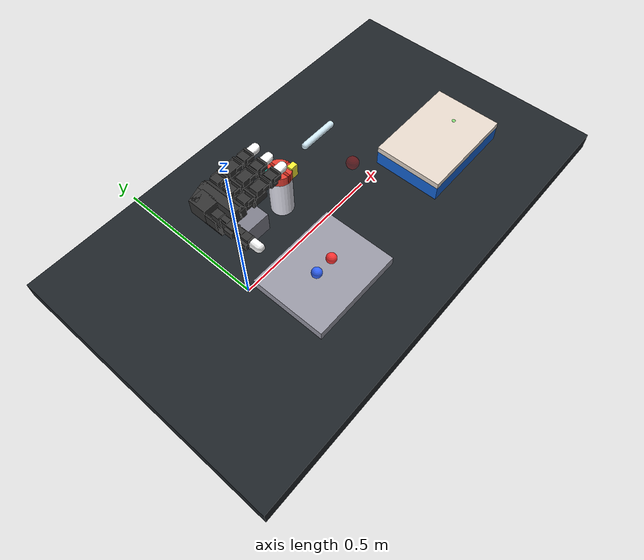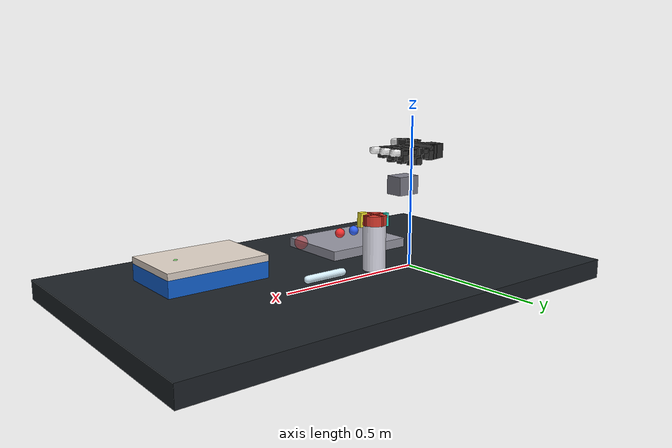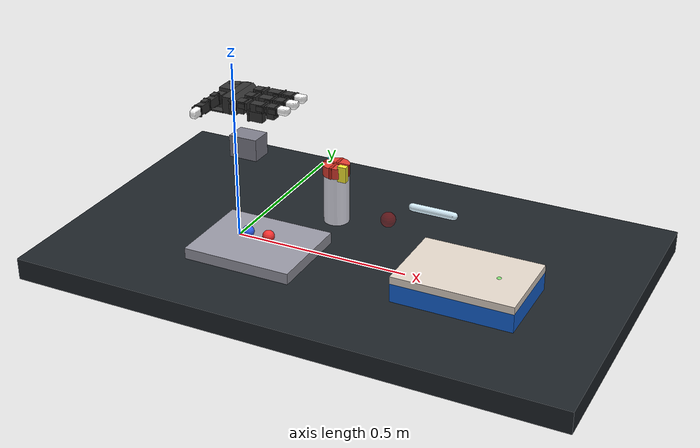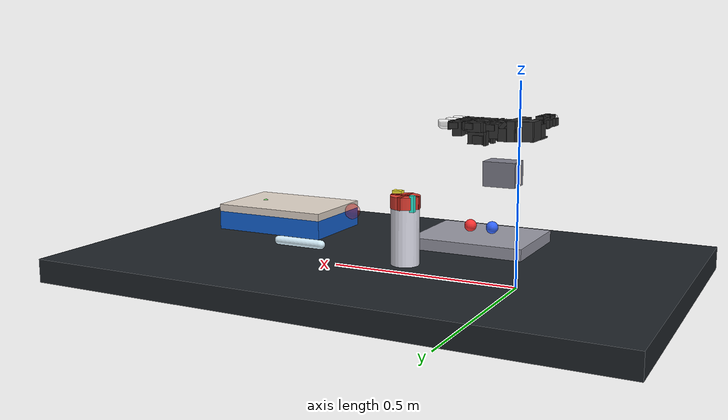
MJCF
<mujoco model="leap_rh">
  <compiler angle="radian" meshdir="assets/leap_hand/assets/"/>
  <option integrator="implicitfast" cone="elliptic" impratio="100"/>

  <!-- mesh assets -->
  <visual><global offwidth="1280" offheight="720"/></visual>
  <asset>
    <material name="black" rgba="0.2 0.2 0.2 1"/>
    <material name="white" rgba="1 1 1 1"/>

    <mesh name="palm" file="palm_right.obj"/>
    <mesh name="base" file="base.obj"/>
    <mesh name="proximal" file="proximal.obj"/>
    <mesh name="medial" file="medial.obj"/>
    <mesh name="distal" file="distal.obj"/>
    <mesh name="tip" file="tip.obj"/>
    <mesh name="thumb_base" file="thumb_base.obj"/>
    <mesh name="thumb_proximal" file="thumb_proximal.obj"/>
    <mesh name="thumb_distal" file="thumb_distal.obj"/>
    <mesh name="thumb_tip" file="thumb_tip.obj"/>
  </asset>

  <!-- defaults -->
  <default>
    <!-- constraint stiffness -->
    <geom solimp="0.999 0.999 0.001 0.0001 1" solref="0.0001 1" friction=".2"/>

    <!-- actuator defaults -->
    <position kp="3.0" kv="0.01"/>
    <joint damping="0.03" frictionloss="0.001"/>

    <!-- geom class defaults -->
    <default class="visual">
      <geom group="1" type="mesh" contype="0" conaffinity="0" density="0" material="black"/>
    </default>
    <default class="collision">
      <geom material="black"/>
    </default>
    <default class="tip">
      <geom type="mesh" mesh="tip" friction="0.5" material="white"/>
    </default>
    <default class="thumb_tip">
      <geom type="mesh" mesh="thumb_tip" friction="0.5" material="white"/>
    </default>

    <!-- joint class defaults -->
    <default class="mcp">
      <joint pos="0 0 0" axis="0 0 -1" limited="true" range="-0.314 2.23"/>
      <position ctrlrange="-0.314 2.23"/>
    </default>
    <default class="rot">
      <joint pos="0 0 0" axis="0 0 -1" limited="true" range="-1.047 1.047"/>
      <position ctrlrange="-1.047 1.047"/>
    </default>
    <default class="pip">
      <joint pos="0 0 0" axis="0 0 -1" limited="true" range="-0.506 1.885"/>
      <position ctrlrange="-0.506 1.885"/>
    </default>
    <default class="dip">
      <joint pos="0 0 0" axis="0 0 -1" limited="true" range="-0.366 2.042"/>
      <position ctrlrange="-0.366 2.042"/>
    </default>
    <default class="thumb_cmc">
      <joint pos="0 0 0" axis="0 0 -1" limited="true" range="-0.349 2.094"/>
      <position ctrlrange="-0.349 2.094"/>
    </default>
    <default class="thumb_axl">
      <joint pos="0 0 0" axis="0 0 -1" limited="true" range="-0.349 2.094"/>
      <position ctrlrange="-0.349 2.094"/>
    </default>
    <default class="thumb_mcp">
      <joint pos="0 0 0" axis="0 0 -1" limited="true" range="-0.47 2.443"/>
      <position ctrlrange="-0.47 2.443"/>
    </default>
    <default class="thumb_ipl">
      <joint pos="0 0 0" axis="0 0 -1" limited="true" range="-1.34 1.88"/>
      <position ctrlrange="-1.34 1.88"/>
    </default>
  </default>

  <!-- collision filtering -->
  <contact>
    <!-- filter the palm from all other finger bodies except the tips -->
    <exclude body1="palm" body2="if_bs"/>
    <exclude body1="palm" body2="mf_bs"/>
    <exclude body1="palm" body2="rf_bs"/>
    <exclude body1="palm" body2="th_mp"/>

    <exclude body1="palm" body2="if_px"/>
    <exclude body1="palm" body2="mf_px"/>
    <exclude body1="palm" body2="rf_px"/>
    <exclude body1="palm" body2="th_bs"/>

    <exclude body1="palm" body2="if_md"/>
    <exclude body1="palm" body2="mf_md"/>
    <exclude body1="palm" body2="rf_md"/>
    <exclude body1="palm" body2="th_px"/>

    <!-- none of the base fingertip geoms can touch each other -->
    <exclude body1="if_bs" body2="mf_bs"/>
    <exclude body1="if_bs" body2="rf_bs"/>
    <exclude body1="mf_bs" body2="rf_bs"/>

    <exclude body1="th_mp" body2="if_bs"/>
    <exclude body1="th_mp" body2="mf_bs"/>
    <exclude body1="th_mp" body2="rf_bs"/>
  </contact>

  <!-- actuators -->
  <actuator>
    <!-- index -->
    <position name="if_mcp_act" joint="if_mcp" class="mcp"/>
    <position name="if_rot_act" joint="if_rot" class="rot"/>
    <position name="if_pip_act" joint="if_pip" class="pip"/>
    <position name="if_dip_act" joint="if_dip" class="dip"/>

    <!-- middle -->
    <position name="mf_mcp_act" joint="mf_mcp" class="mcp"/>
    <position name="mf_rot_act" joint="mf_rot" class="rot"/>
    <position name="mf_pip_act" joint="mf_pip" class="pip"/>
    <position name="mf_dip_act" joint="mf_dip" class="dip"/>

    <!-- ring -->
    <position name="rf_mcp_act" joint="rf_mcp" class="mcp"/>
    <position name="rf_rot_act" joint="rf_rot" class="rot"/>
    <position name="rf_pip_act" joint="rf_pip" class="pip"/>
    <position name="rf_dip_act" joint="rf_dip" class="dip"/>

    <!-- thumb -->
    <position name="th_cmc_act" joint="th_cmc" class="thumb_cmc"/>
    <position name="th_axl_act" joint="th_axl" class="thumb_axl"/>
    <position name="th_mcp_act" joint="th_mcp" class="thumb_mcp"/>
    <position name="th_ipl_act" joint="th_ipl" class="thumb_ipl"/>
    <position joint="arm_x" kp="220"/>
  <position joint="arm_y" kp="220"/>
  <position joint="arm_z" kp="220"/>
  <position joint="lid_hinge" kp="10"/>
</actuator>

  <!-- sensors -->
  <sensor>
    <!-- index -->
    <jointpos name="if_mcp_sensor" joint="if_mcp"/>
    <jointpos name="if_rot_sensor" joint="if_rot"/>
    <jointpos name="if_pip_sensor" joint="if_pip"/>
    <jointpos name="if_dip_sensor" joint="if_dip"/>

    <!-- middle -->
    <jointpos name="mf_mcp_sensor" joint="mf_mcp"/>
    <jointpos name="mf_rot_sensor" joint="mf_rot"/>
    <jointpos name="mf_pip_sensor" joint="mf_pip"/>
    <jointpos name="mf_dip_sensor" joint="mf_dip"/>

    <!-- ring -->
    <jointpos name="rf_mcp_sensor" joint="rf_mcp"/>
    <jointpos name="rf_rot_sensor" joint="rf_rot"/>
    <jointpos name="rf_pip_sensor" joint="rf_pip"/>
    <jointpos name="rf_dip_sensor" joint="rf_dip"/>

    <!-- thumb -->
    <jointpos name="th_cmc_sensor" joint="th_cmc"/>
    <jointpos name="th_axl_sensor" joint="th_axl"/>
    <jointpos name="th_mcp_sensor" joint="th_mcp"/>
    <jointpos name="th_ipl_sensor" joint="th_ipl"/>
    <jointpos joint="arm_x"/>
  <jointpos joint="arm_y"/>
  <jointpos joint="arm_z"/>
  <touch name="lid_touch" site="lid_touch_site"/>
</sensor>

  <worldbody>
    <light pos="0 -3 4" dir="0 1 -1"/>
    <camera name="overhead" pos="0.35 0 3.2" xyaxes="1 0 0 0 1 0"/>
    <camera name="side" pos="0.35 -2.2 0.7" xyaxes="1 0 0 0 0 1"/>
    <camera name="closeup" mode="targetbody" target="arm_base" pos="0.15 -0.3 0.15"/>

    <geom name="table" type="box" size="0.75 0.45 0.03" pos="0.35 0 0.02" rgba="0.12 0.14 0.16 1"/>
    <geom name="pill_tray" type="box" size="0.15 0.12 0.015" pos="0.15 -0.15 0.075" rgba="0.6 0.6 0.65 1"/>

    <body name="pill_red" pos="0.18 -0.15 0.11"><joint name="pill_red_f" type="free"/>
      <geom type="sphere" size="0.016" rgba="1 0.2 0.2 1" mass="0.003"/></body>
    <body name="pill_blue" pos="0.12 -0.15 0.11"><joint name="pill_blue_f" type="free"/>
      <geom type="sphere" size="0.016" rgba="0.2 0.4 1 1" mass="0.003"/></body>

    <body name="kit_box" pos="0.72 -0.12 0.06">
      <geom name="kit_base" type="box" size="0.16 0.11 0.025" pos="0 0 0.025" rgba="0.08 0.4 0.85 1"/>
      <geom type="box" size="0.06 0.09 0.018" pos="-0.05 0 0.04" rgba="0.15 0.45 0.85 0.7"/>
      <geom type="box" size="0.025 0.09 0.018" pos="0.07 0 0.04" rgba="0.15 0.45 0.85 0.7"/>
      <body name="kit_lid" pos="0 0 0.05">
        <joint name="lid_hinge" type="hinge" axis="0 1 0" range="0 1.571"/>
        <geom name="lid_geom" type="box" size="0.16 0.11 0.01" pos="0 0 0.01" rgba="0.9 0.85 0.8 1"/>
        <site name="lid_touch_site" pos="0.08 0 0.015" size="0.008" type="sphere" rgba="0 1 0 0.4"/>
      </body>
    </body>

    <body name="medicine_vial" pos="0.25 0.10 0.13"><joint name="vial_free" type="free"/>
      <geom name="vial_body" type="cylinder" size="0.035 0.075" rgba="0.9 0.9 0.95 1" mass="0.05"/></body>

    <body name="medicine_cap" pos="0.25 0.10 0.21"><joint name="cap_free" type="free"/>
      <geom name="cap_geom" type="cylinder" size="0.037 0.015" rgba="0.9 0.25 0.2 1" mass="0.008"/>
      <geom type="box" size="0.037 0.004 0.016" pos="0 0 0" rgba="0.75 0.15 0.1 1"/>
      <geom type="box" size="0.004 0.037 0.016" pos="0 0 0" rgba="0.75 0.15 0.1 1"/>
      <geom name="cap_notch" type="box" size="0.012 0.008 0.022" pos="0.030 -0.022 0" rgba="1 0.95 0.2 1"/>
      <geom name="cap_notch2" type="box" size="0.006 0.006 0.020" pos="-0.028 0.020 0" rgba="0.2 1 0.9 1"/>
    </body>

    <body name="syringe" pos="0.50 0.18 0.10"><joint name="syringe_free" type="free"/>
      <geom type="capsule" fromto="-0.06 0 0 0.06 0 0" size="0.011" rgba="0.85 0.95 1 1" mass="0.02"/></body>

    <body name="target_site_body" pos="0.45 0 0.15"><site name="target_site" size="0.02" rgba="1 0 0 0.3"/></body>

    <body name="arm_base" pos="0.04 0 0.28">
      <joint name="arm_x" type="slide" axis="1 0 0" range="0 0.9"/>
      <joint name="arm_y" type="slide" axis="0 1 0" range="-0.3 0.3"/>
      <joint name="arm_z" type="slide" axis="0 0 1" range="-0.2 0.25"/>
      <geom type="box" size="0.04 0.03 0.03" rgba="0.5 0.5 0.55 1"/>
      <body name="palm" pos="0 0 0.1" quat="0 1 0 0">

      <!-- palm -->
      <inertial pos="-0.049542 -0.042914 -0.010227" quat="0.565586 0.427629 -0.574956 0.408254" mass="0.237"
        diaginertia="0.000407345 0.000304759 0.000180736"/>
      <geom name="palm_collision_1" size="0.011 0.013 0.017" pos="-0.009 0.008 -0.011" type="box" class="collision"/>
      <geom name="palm_collision_2" size="0.011 0.013 0.017" pos="-0.009 -0.037 -0.011" type="box" class="collision"/>
      <geom name="palm_collision_3" size="0.011 0.013 0.017" pos="-0.009 -0.082 -0.011" type="box" class="collision"/>
      <geom name="palm_collision_4" size="0.029 0.01 0.023" pos="-0.066 -0.078 -0.0115" quat="0.989016 0 0 -0.147806"
        type="box" class="collision"/>
      <geom name="palm_collision_5" size="0.01 0.06 0.015" pos="-0.03 -0.035 -0.003" type="box" class="collision"/>
      <geom name="palm_collision_6" size="0.005 0.06 0.01" pos="-0.032 -0.035 -0.024" quat="0.923956 0 0.382499 0"
        type="box" class="collision"/>
      <geom name="palm_collision_7" size="0.012 0.058 0.023" pos="-0.048 -0.033 -0.0115" type="box" class="collision"/>
      <geom name="palm_collision_8" size="0.022 0.026 0.023" pos="-0.078 -0.053 -0.0115" type="box" class="collision"/>
      <geom name="palm_collision_9" size="0.002 0.018 0.017" pos="-0.098 -0.009 -0.006" type="box" class="collision"/>
      <geom name="palm_collision_10" size="0.022 0.028 0.002" pos="-0.078 -0.003 0.01" type="box" class="collision"/>

      <!-- index -->
      <body name="if_bs" pos="-0.007 0.023 -0.0187" quat="0.500003 0.5 0.5 -0.499997">
        <inertial pos="-0.022516 0.033882 0.016359" quat="0.388092 0.677951 -0.247713 0.573067" mass="0.044"
          diaginertia="1.74972e-05 1.61504e-05 7.21342e-06"/>
        <joint name="if_mcp" class="mcp"/>
        <geom name="if_bs_collision_1" size="0.01 0.003 0.017" pos="0 0.018 0.0147" type="box" class="collision"/>
        <geom name="if_bs_collision_2" size="0.014 0.02 0.01" pos="-0.027 0.042 0.015" type="box" class="collision"/>
        <geom name="if_bs_collision_3" size="0.017 0.003 0.01" pos="-0.0262 0.02 0.0146" type="box" class="collision"/>
        <geom name="if_bs_collision_4" size="0.01 0.012 0.004" pos="-0.0295 0.035 0.029" type="box" class="collision"/>
        <geom name="if_bs_collision_5" size="0.007 0.01 0.002" pos="0 0.005 0.03" type="box" class="collision"/>
        <geom name="if_bs_collision_6" size="0.007 0.01 0.002" pos="0 0.005 -0.001" type="box" class="collision"/>

        <body name="if_px" pos="-0.0122 0.0381 0.0145" quat="0.500003 -0.5 -0.499997 0.5">
          <inertial pos="0.0075 -0.0002 -0.011" quat="0 0.707107 0 0.707107" mass="0.032"
            diaginertia="4.8853e-06 4.3733e-06 3.0933e-06"/>
          <joint name="if_rot" class="rot"/>
          <geom name="if_px_collision" size="0.017 0.013 0.011" pos="0.0075 -0.0002 -0.011" type="box"
            class="collision"/>

          <body name="if_md" pos="0.015 0.0143 -0.013" quat="0.500003 0.5 -0.5 0.499997">
            <inertial pos="0.0054215 -0.029148 0.015" quat="0.687228 0.687228 0.166487 0.166487" mass="0.037"
              diaginertia="8.28004e-06 8.1598e-06 5.39516e-06"/>
            <joint name="if_pip" class="pip"/>
            <geom name="if_md_collision_1" size="0.008 0.003 0.013" pos="0 -0.02 0.015" type="box" class="collision"/>
            <geom name="if_md_collision_2" size="0.01 0.002 0.017" pos="0 -0.016 0.015" type="box" class="collision"/>
            <geom name="if_md_collision_3" size="0.007 0.01 0.002" pos="0 -0.0045 0.03" type="box" class="collision"/>
            <geom name="if_md_collision_4" size="0.007 0.01 0.002" pos="0 -0.0045 0" type="box" class="collision"/>
            <geom name="if_md_collision_5" size="0.017 0.011 0.013" pos="0.0075 -0.035 0.015" type="box"
              class="collision"/>

            <body name="if_ds" pos="0 -0.0361 0.0002">
              <inertial pos="-0.0008794 -0.027019 0.014594" quat="0.702905 0.710643 -0.0212937 -0.0214203" mass="0.016"
                diaginertia="3.71863e-06 3.02396e-06 1.6518e-06"/>
              <joint name="if_dip" class="dip"/>
              <geom name="if_ds_collision_1" size="0.01 0.003 0.015" pos="0 -0.017 0.015" type="box" class="collision"/>
              <geom name="if_ds_collision_2" size="0.007 0.011 0.002" pos="0 -0.006 0.03" type="box" class="collision"/>
              <geom name="if_ds_collision_3" size="0.007 0.011 0.002" pos="0 -0.006 -0.001" type="box"
                class="collision"/>

              <geom name="if_tip" class="tip"/>
            </body>
          </body>
        </body>
      </body>
      <!-- index -->

      <!-- middle -->
      <body name="mf_bs" pos="-0.0071 -0.0224 -0.0187" quat="0.500003 0.5 0.5 -0.499997">
        <inertial pos="-0.022516 0.033882 0.016359" quat="0.388092 0.677951 -0.247713 0.573067" mass="0.044"
          diaginertia="1.74972e-05 1.61504e-05 7.21342e-06"/>
        <joint name="mf_mcp" class="mcp"/>
        <geom name="mf_bs_collision_1" size="0.01 0.003 0.017" pos="0 0.018 0.0147" type="box" class="collision"/>
        <geom name="mf_bs_collision_2" size="0.014 0.02 0.01" pos="-0.027 0.042 0.015" type="box" class="collision"/>
        <geom name="mf_bs_collision_3" size="0.017 0.003 0.01" pos="-0.0262 0.02 0.0146" type="box" class="collision"/>
        <geom name="mf_bs_collision_4" size="0.01 0.012 0.004" pos="-0.0295 0.035 0.029" type="box" class="collision"/>
        <geom name="mf_bs_collision_5" size="0.007 0.01 0.002" pos="0 0.005 0.03" type="box" class="collision"/>
        <geom name="mf_bs_collision_6" size="0.007 0.01 0.002" pos="0 0.005 -0.001" type="box" class="collision"/>

        <body name="mf_px" pos="-0.0122 0.0381 0.0145" quat="0.500003 -0.5 -0.499997 0.5">
          <inertial pos="0.0075 -0.0002 -0.011" quat="0 0.707107 0 0.707107" mass="0.032"
            diaginertia="4.8853e-06 4.3733e-06 3.0933e-06"/>
          <joint name="mf_rot" class="rot"/>
          <geom name="mf_px_collision" size="0.017 0.013 0.011" pos="0.0075 -0.0002 -0.011" type="box"
            class="collision"/>

          <body name="mf_md" pos="0.015 0.0143 -0.013" quat="0.500003 0.5 -0.5 0.499997">
            <inertial pos="0.0054215 -0.029148 0.015" quat="0.687228 0.687228 0.166487 0.166487" mass="0.037"
              diaginertia="8.28004e-06 8.1598e-06 5.39516e-06"/>
            <joint name="mf_pip" class="pip"/>
            <geom name="mf_md_collision_1" size="0.008 0.003 0.013" pos="0 -0.02 0.015" type="box" class="collision"/>
            <geom name="mf_md_collision_2" size="0.01 0.002 0.017" pos="0 -0.016 0.015" type="box" class="collision"/>
            <geom name="mf_md_collision_3" size="0.007 0.01 0.002" pos="0 -0.0045 0.03" type="box" class="collision"/>
            <geom name="mf_md_collision_4" size="0.007 0.01 0.002" pos="0 -0.0045 0" type="box" class="collision"/>
            <geom name="mf_md_collision_5" size="0.017 0.011 0.013" pos="0.0075 -0.035 0.015" type="box"
              class="collision"/>

            <body name="mf_ds" pos="0 -0.0361 0.0002">
              <inertial pos="-0.0008794 -0.027019 0.014594" quat="0.702905 0.710643 -0.0212937 -0.0214203" mass="0.016"
                diaginertia="3.71863e-06 3.02396e-06 1.6518e-06"/>
              <joint name="mf_dip" class="dip"/>
              <geom name="mf_ds_collision_1" size="0.01 0.003 0.015" pos="0 -0.017 0.015" type="box" class="collision"/>
              <geom name="mf_ds_collision_2" size="0.007 0.011 0.002" pos="0 -0.006 0.03" type="box" class="collision"/>
              <geom name="mf_ds_collision_3" size="0.007 0.011 0.002" pos="0 -0.006 -0.001" type="box"
                class="collision"/>

              <geom name="mf_tip" class="tip"/>
            </body>
          </body>
        </body>
      </body>
      <!-- middle -->

      <!-- ring -->
      <body name="rf_bs" pos="-0.00709 -0.0678 -0.0187" quat="0.500003 0.5 0.5 -0.499997">
        <inertial pos="-0.022516 0.033882 0.016359" quat="0.388092 0.677951 -0.247713 0.573067" mass="0.044"
          diaginertia="1.74972e-05 1.61504e-05 7.21342e-06"/>
        <joint name="rf_mcp" class="mcp"/>
        <geom name="rf_bs_collision_1" size="0.01 0.003 0.017" pos="0 0.018 0.0147" type="box" class="collision"/>
        <geom name="rf_bs_collision_2" size="0.014 0.02 0.01" pos="-0.027 0.042 0.015" type="box" class="collision"/>
        <geom name="rf_bs_collision_3" size="0.017 0.003 0.01" pos="-0.0262 0.02 0.0146" type="box" class="collision"/>
        <geom name="rf_bs_collision_4" size="0.01 0.012 0.004" pos="-0.0295 0.035 0.029" type="box" class="collision"/>
        <geom name="rf_bs_collision_5" size="0.007 0.01 0.002" pos="0 0.005 0.03" type="box" class="collision"/>
        <geom name="rf_bs_collision_6" size="0.007 0.01 0.002" pos="0 0.005 -0.001" type="box" class="collision"/>

        <body name="rf_px" pos="-0.0122 0.0381 0.0145" quat="0.500003 -0.5 -0.499997 0.5">
          <inertial pos="0.0075 -0.0002 -0.011" quat="0 0.707107 0 0.707107" mass="0.032"
            diaginertia="4.8853e-06 4.3733e-06 3.0933e-06"/>
          <joint name="rf_rot" class="rot"/>
          <geom name="rf_px_collision" size="0.017 0.013 0.011" pos="0.0075 -0.0002 -0.011" type="box"
            class="collision"/>

          <body name="rf_md" pos="0.015 0.0143 -0.013" quat="0.500003 0.5 -0.5 0.499997">
            <inertial pos="0.0054215 -0.029148 0.015" quat="0.687228 0.687228 0.166487 0.166487" mass="0.037"
              diaginertia="8.28004e-06 8.1598e-06 5.39516e-06"/>
            <joint name="rf_pip" class="pip"/>
            <geom name="rf_md_collision_1" size="0.008 0.003 0.013" pos="0 -0.02 0.015" type="box" class="collision"/>
            <geom name="rf_md_collision_2" size="0.01 0.002 0.017" pos="0 -0.016 0.015" type="box" class="collision"/>
            <geom name="rf_md_collision_3" size="0.007 0.01 0.002" pos="0 -0.0045 0.03" type="box" class="collision"/>
            <geom name="rf_md_collision_4" size="0.007 0.01 0.002" pos="0 -0.0045 0" type="box" class="collision"/>
            <geom name="rf_md_collision_5" size="0.017 0.011 0.013" pos="0.0075 -0.035 0.015" type="box"
              class="collision"/>

            <body name="rf_ds" pos="0 -0.03609 0.0002">
              <inertial pos="-0.0008794 -0.027019 0.014594" quat="0.702905 0.710643 -0.0212937 -0.0214203" mass="0.016"
                diaginertia="3.71863e-06 3.02396e-06 1.6518e-06"/>
              <joint name="rf_dip" class="dip"/>
              <geom name="rf_ds_collision_1" size="0.01 0.003 0.015" pos="0 -0.017 0.015" type="box" class="collision"/>
              <geom name="rf_ds_collision_2" size="0.007 0.011 0.002" pos="0 -0.006 0.03" type="box" class="collision"/>
              <geom name="rf_ds_collision_3" size="0.007 0.011 0.002" pos="0 -0.006 -0.001" type="box"
                class="collision"/>

              <geom name="rf_tip" class="tip"/>
            </body>
          </body>
        </body>
      </body>
      <!-- ring -->

      <!-- thumb -->
      <body name="th_mp" pos="-0.0693 -0.0012 -0.0216" quat="0.707109 0 0.707105 0">
        <inertial pos="0.0075 -0.0002 -0.011" quat="0 0.707107 0 0.707107" mass="0.032"
          diaginertia="4.8853e-06 4.3733e-06 3.0933e-06"/>
        <joint name="th_cmc" class="thumb_cmc"/>
        <geom name="th_mp_collision" size="0.017 0.013 0.011" pos="-0.0075 -0.0002 -0.011" type="box"
          class="collision"/>

        <body name="th_bs" pos="0 0.0143 -0.013" quat="0.500003 0.5 -0.5 0.499997">
          <inertial pos="0 0 -0.0070806" quat="0.707107 0.707107 0 0" mass="0.003"
            diaginertia="6.1932e-07 5.351e-07 2.1516e-07"/>
          <joint name="th_axl" class="thumb_axl"/>
          <geom name="th_bs_collision_1" size="0.009 0.0165 0.002" pos="0 0 -0.0015" type="box" class="collision"/>
          <geom name="th_bs_collision_2" size="0.007 0.002 0.01" pos="0 -0.015 -0.013" type="box" class="collision"/>
          <geom name="th_bs_collision_3" size="0.007 0.002 0.01" pos="0 0.015 -0.013" type="box" class="collision"/>

          <body name="th_px" pos="0 0.0145 -0.017" quat="0.707109 -0.707105 0 0">
            <inertial pos="-0.0020593 0.015912 -0.013733" quat="0.698518 0.697382 -0.104933 0.121324" mass="0.038"
              diaginertia="9.87104e-06 9.32653e-06 4.36203e-06"/>
            <joint name="th_mcp" class="thumb_mcp"/>
            <geom name="th_px_collision_1" size="0.01 0.02 0.012" pos="0 0.0105 -0.014" type="box" class="collision"/>
            <geom name="th_px_collision_2" size="0.01 0.002 0.016" pos="0 0.031 -0.015" type="box" class="collision"/>
            <geom name="th_px_collision_3" size="0.007 0.01 0.002" pos="0 0.042 0.001" type="box" class="collision"/>
            <geom name="th_px_collision_4" size="0.007 0.01 0.002" pos="0 0.042 -0.029" type="box" class="collision"/>
            <geom name="th_px_collision_5" size="0.005 0.012 0.009" pos="-0.0135 0.0175 -0.011656" type="box"
              class="collision"/>

            <body name="th_ds" pos="0 0.0466 0.0002" quat="1.32679e-06 0 0 1">
              <inertial pos="0.00096191 -0.024203 -0.014419" quat="0.35287 0.311272 -0.632839 0.614904" mass="0.049"
                diaginertia="2.08591e-05 2.0402e-05 4.71335e-06"/>
              <joint name="th_ipl" class="thumb_ipl"/>
              <geom name="th_ds_collision_1" size="0.01 0.018 0.012" pos="0 -0.0085 -0.015" type="box"
                class="collision"/>
              <geom name="th_ds_collision_2" size="0.01 0.002 0.015" pos="0 -0.029 -0.014" type="box"
                class="collision"/>
              <geom name="th_ds_collision_3" size="0.004 0.012 0.009" pos="0.015 -0.0175 -0.0115" type="box"
                class="collision"/>

              <geom name="th_tip" class="thumb_tip"/>
            </body>
          </body>
        </body>
      </body>
      <!-- thumb -->

      </body>
    </body>

    <!-- palm -->
  </worldbody>
</mujoco>
